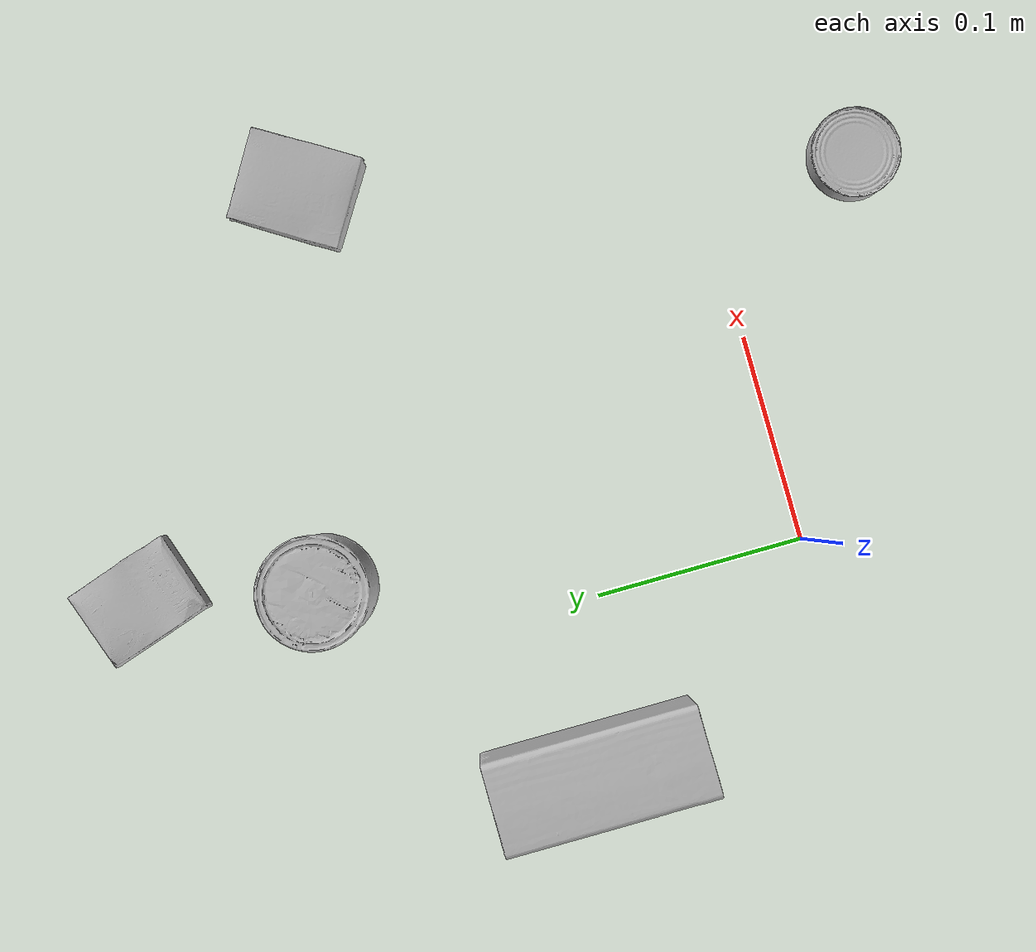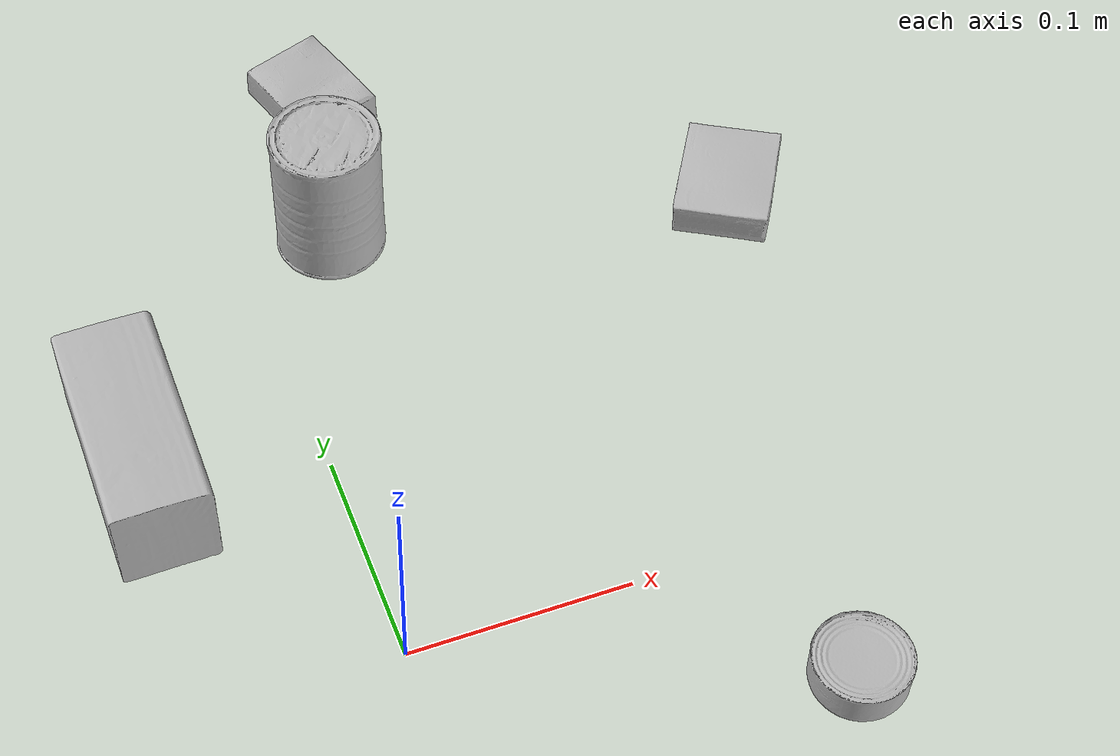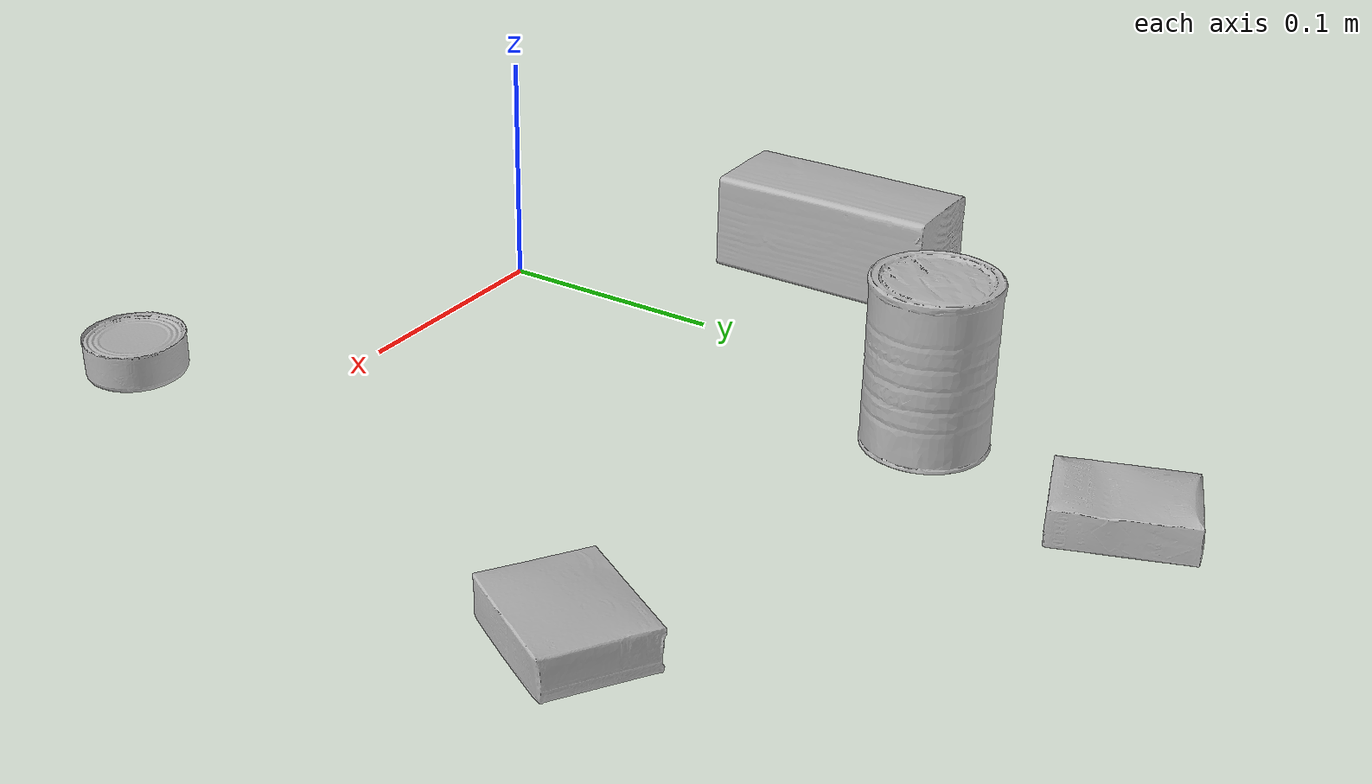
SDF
<sdf version="1.4">
  <world name="default">
    <light name="light1" type="point">
      <pose>0 0 1 0 0 0</pose>
      <diffuse>3 3 3 1</diffuse>
      <specular>3 3 3 1</specular>
    </light>
    <light name="light2" type="point">
      <pose>0 0.5 2 0 0 0</pose>
      <diffuse>1 1 1 1</diffuse>
      <specular>1 1 1 1</specular>
    </light>
    <light name="light3" type="point">
      <pose>0 0.5 2 0 0 0</pose>
      <diffuse>3 3 3 1</diffuse>
      <specular>3 3 3 1</specular>
    </light>
    <scene>
      <ambient>0.7 0.7 0.7</ambient>
    </scene>
    <model name="box1">
      <link name="link_box1">
        <collision name="default">
          <geometry>
            <mesh>
              <uri>model://pudding_box/collision_meshes/collision.obj</uri>
              <scale>0.5 0.5 0.5</scale>
            </mesh>
          </geometry>
          <surface>
            <friction>
              <ode>
                <mu>0.5</mu>
                <mu2>0.5</mu2>
              </ode>
            </friction>
          <contact>
        <ode>
            <max_vel>0</max_vel>
            <min_depth>0.0001</min_depth>
            <kp>1e8</kp>
        </ode>
    </contact></surface>
        </collision>
        <visual name="default">
          <geometry>
            <mesh>
              <uri>model://pudding_box/visual_meshes/visual.dae</uri>
              <scale>0.5 0.5 0.5</scale>
            </mesh>
          </geometry>
        </visual>
        <inertial>
          <mass>0.03999795392155647</mass>
          <pose>0.00024474109522998333 0.0004033942532259971 -0.0002594413817860186 0.005213101299265121 -0.006603799659933957 0.020079830747700592</pose>
          <inertia>
            <ixx>1.1303907e-05</ixx>
            <iyy>7.605349e-06</iyy>
            <izz>1.6693173e-05</izz>
            <ixy>0</ixy>
            <ixz>0</ixz>
            <iyz>0</iyz>
          </inertia>
        </inertial>
      </link>
      <pose>0.22371773421764374 0.18615078926086426 0.009862903505563736 0.022348408400452574 -0.011391785950387773 -0.5479365701713131</pose>
    </model>
    <model name="box2">
      <link name="link_box2">
        <collision name="default">
          <geometry>
            <mesh>
              <uri>model://cracker_box/collision_meshes/collision.obj</uri>
              <scale>0.25 0.25 0.25</scale>
            </mesh>
          </geometry>
          <surface>
            <friction>
              <ode>
                <mu>0.5</mu>
                <mu2>0.5</mu2>
              </ode>
            </friction>
          <contact>
        <ode>
            <max_vel>0</max_vel>
            <min_depth>0.0001</min_depth>
            <kp>1e8</kp>
        </ode>
    </contact></surface>
        </collision>
        <visual name="default">
          <geometry>
            <mesh>
              <uri>model://cracker_box/visual_meshes/visual.dae</uri>
              <scale>0.25 0.25 0.25</scale>
            </mesh>
          </geometry>
        </visual>
        <inertial>
          <mass>0.046595875173807144</mass>
          <pose>0.00023660322767682374 6.358561950037256e-05 -0.0004257383698131889 -0.00031620768958073674 -0.011106491463008503 0.002546795235494827</pose>
          <inertia>
            <ixx>7.407444e-06</ixx>
            <iyy>1.2231146e-05</iyy>
            <izz>1.7454966e-05</izz>
            <ixy>0</ixy>
            <ixz>0</ixz>
            <iyz>0</iyz>
          </inertia>
        </inertial>
      </link>
      <pose>0.05660894885659218 0.3092890977859497 0.009096027351915836 -0.014050471350661902 -0.005016593914027442 1.887497623009089</pose>
    </model>
    <model name="box3">
      <link name="link_box3">
        <collision name="default">
          <geometry>
            <mesh>
              <uri>model://wood_block/collision_meshes/collision.obj</uri>
              <scale>0.5 0.5 0.5</scale>
            </mesh>
          </geometry>
          <surface>
            <friction>
              <ode>
                <mu>0.5</mu>
                <mu2>0.5</mu2>
              </ode>
            </friction>
          <contact>
        <ode>
            <max_vel>0</max_vel>
            <min_depth>0.0001</min_depth>
            <kp>1e8</kp>
        </ode>
    </contact></surface>
        </collision>
        <visual name="default">
          <geometry>
            <mesh>
              <uri>model://wood_block/visual_meshes/visual.dae</uri>
              <scale>0.5 0.5 0.5</scale>
            </mesh>
          </geometry>
        </visual>
        <inertial>
          <mass>0.28600308299064636</mass>
          <pose>-2.9066577553749084e-06 -0.000285404734313488 0.00013204291462898254 -0.052207212015849935 -0.005192697210617926 -0.006861377963206113</pose>
          <inertia>
            <ixx>9.567885e-05</ixx>
            <iyy>0.00030224954</iyy>
            <izz>0.00030111894</izz>
            <ixy>0</ixy>
            <ixz>0</ixz>
            <iyz>0</iyz>
          </inertia>
        </inertial>
      </link>
      <pose>-0.07840589433908463 0.12371035665273666 0.022629264742136 -0.005208544227099894 0.005718763137430357 1.5744309695541214</pose>
    </model>
    <model name="can1">
      <link name="link_can1">
        <collision name="default">
          <geometry>
            <mesh>
              <uri>model://master_chef_can/collision_meshes/collision.obj</uri>
              <scale>0.5 0.5 0.5</scale>
            </mesh>
          </geometry>
          <surface>
            <friction>
              <ode>
                <mu>0.5</mu>
                <mu2>0.5</mu2>
              </ode>
            </friction>
          <contact>
        <ode>
            <max_vel>0</max_vel>
            <min_depth>0.0001</min_depth>
            <kp>1e8</kp>
        </ode>
    </contact></surface>
        </collision>
        <visual name="default">
          <geometry>
            <mesh>
              <uri>model://master_chef_can/visual_meshes/visual.dae</uri>
              <scale>0.5 0.5 0.5</scale>
            </mesh>
          </geometry>
        </visual>
        <inertial>
          <mass>0.116209015250206</mass>
          <pose>-4.661964703700505e-05 1.3926850783718692e-07 -5.0799026212189347e-05 -0.001799512795725948 0.0006479254888938259 -0.6102617322721998</pose>
          <inertia>
            <ixx>6.820682e-05</ixx>
            <iyy>6.7704816e-05</iyy>
            <izz>3.768948e-05</izz>
            <ixy>0</ixy>
            <ixz>0</ixz>
            <iyz>0</iyz>
          </inertia>
        </inertial>
      </link>
      <pose>0.039367809891700745 0.22388392686843872 0.035301998257637024 -1.3129100054932607e-06 -1.0926822791018647e-06 -1.8018370105454684</pose>
    </model>
    <model name="can2">
      <link name="link_can2">
        <collision name="default">
          <geometry>
            <mesh>
              <uri>model://tuna_fish_can/collision_meshes/collision.obj</uri>
              <scale>0.5 0.5 0.5</scale>
            </mesh>
          </geometry>
          <surface>
            <friction>
              <ode>
                <mu>0.5</mu>
                <mu2>0.5</mu2>
              </ode>
            </friction>
          <contact>
        <ode>
            <max_vel>0</max_vel>
            <min_depth>0.0001</min_depth>
            <kp>1e8</kp>
        </ode>
    </contact></surface>
        </collision>
        <visual name="default">
          <geometry>
            <mesh>
              <uri>model://tuna_fish_can/visual_meshes/visual.dae</uri>
              <scale>0.5 0.5 0.5</scale>
            </mesh>
          </geometry>
        </visual>
        <inertial>
          <mass>0.017585277557373047</mass>
          <pose>-2.03625786525663e-05 -7.2565176196803804e-06 -0.000526902440469712 -0.0017944765250671837 0.00017163661440384507 0.24054644931605637</pose>
          <inertia>
            <ixx>2.3775558e-06</ixx>
            <iyy>2.3676464e-06</iyy>
            <izz>4.0683376e-06</izz>
            <ixy>0</ixy>
            <ixz>0</ixz>
            <iyz>0</iyz>
          </inertia>
        </inertial>
      </link>
      <pose>0.16896288096904755 -0.07217096537351608 0.00851999968290329 7.36912858155643e-09 4.986187739940947e-09 -0.6432499484726782</pose>
    </model>
  <physics type="ode">
      <max_contacts>50</max_contacts>
      <ode>
        <solver>
          <type>quick</type>
          <iters>75</iters>
        </solver>
        <constraints>
          <contact_max_correcting_vel>0</contact_max_correcting_vel>
          <contact_surface_layer>0</contact_surface_layer>
        </constraints>
      </ode>
    </physics></world>
</sdf>
